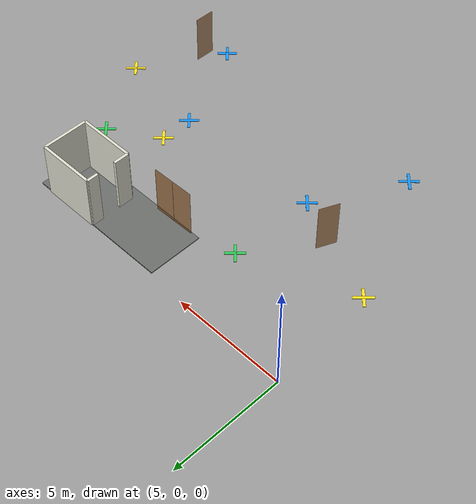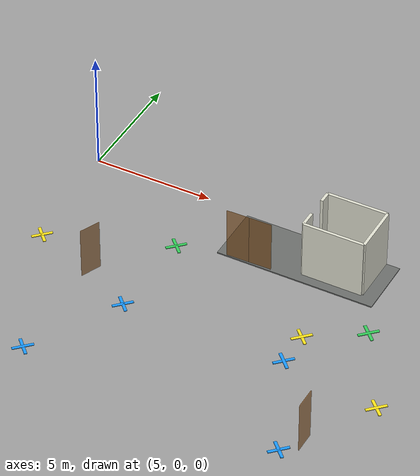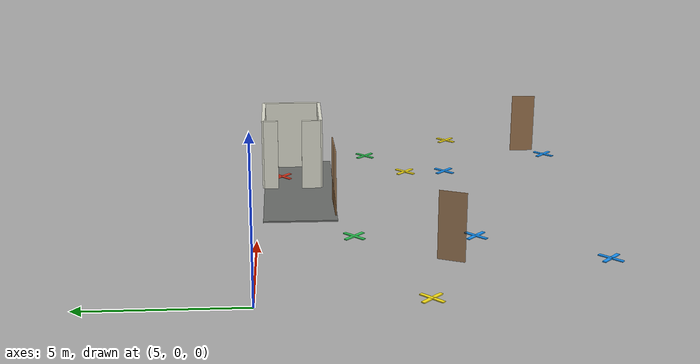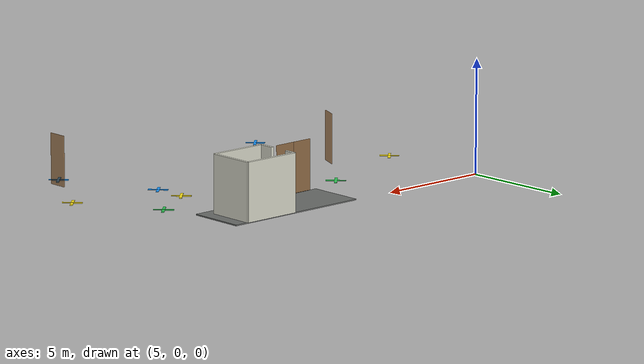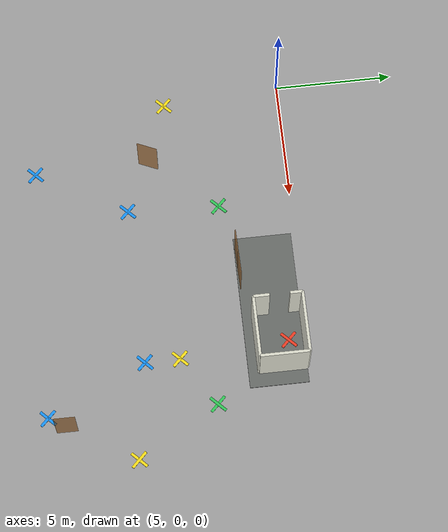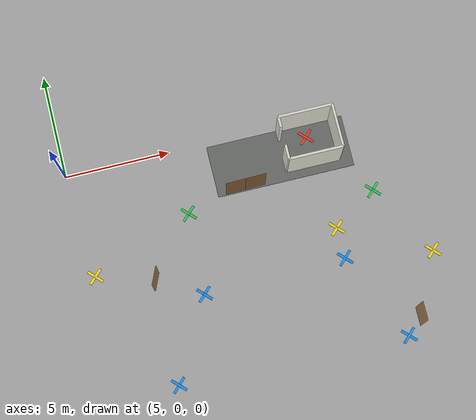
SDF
<sdf version="1.7">
 <world name="office">
  <scene><ambient>0.8 0.8 0.8 1.0</ambient><background>0 0 0</background><grid>false</grid></scene>
  <include><uri>model://sun</uri></include>
  <model name="trash_room_floor_box">
   <static>true</static>
   <link name="floor">
    <visual name="visual">
     <pose>15.099944 -1.409246 -0.025 0 0 0</pose>
     <geometry><box><size>6.60 2.48 0.05</size></box></geometry>
     <material><ambient>0.42 0.43 0.42 1</ambient><diffuse>0.42 0.43 0.42 1</diffuse></material>
    </visual>
    <collision name="collision">
     <pose>15.099944 -1.409246 -0.025 0 0 0</pose>
     <geometry><box><size>6.60 2.48 0.05</size></box></geometry>
    </collision>
   </link>
  </model>
  <model name="trash_room_box_walls">
   <static>true</static>
   <link name="walls">
    <visual name="right_wall_visual">
     <pose>17.776 -1.1851695 1.25 0 0 0</pose>
     <geometry><box><size>0.12 2.03 2.5</size></box></geometry>
     <material><ambient>0.88 0.88 0.82 1</ambient><diffuse>0.88 0.88 0.82 1</diffuse></material>
    </visual>
    <collision name="right_wall_collision">
     <pose>17.776 -1.1851695 1.25 0 0 0</pose>
     <geometry><box><size>0.12 2.03 2.5</size></box></geometry>
    </collision>
    <visual name="top_wall_visual">
     <pose>16.507715 -0.16931 1.25 0 0 0</pose>
     <geometry><box><size>2.54 0.12 2.5</size></box></geometry>
     <material><ambient>0.88 0.88 0.82 1</ambient><diffuse>0.88 0.88 0.82 1</diffuse></material>
    </visual>
    <collision name="top_wall_collision">
     <pose>16.507715 -0.16931 1.25 0 0 0</pose>
     <geometry><box><size>2.54 0.12 2.5</size></box></geometry>
    </collision>
    <visual name="bottom_wall_visual">
     <pose>16.507715 -2.201029 1.25 0 0 0</pose>
     <geometry><box><size>2.54 0.12 2.5</size></box></geometry>
     <material><ambient>0.88 0.88 0.82 1</ambient><diffuse>0.88 0.88 0.82 1</diffuse></material>
    </visual>
    <collision name="bottom_wall_collision">
     <pose>16.507715 -2.201029 1.25 0 0 0</pose>
     <geometry><box><size>2.54 0.12 2.5</size></box></geometry>
    </collision>
    <visual name="left_wall_upper_visual">
     <pose>15.23943 -0.423275 1.25 0 0 0</pose>
     <geometry><box><size>0.12 0.51 2.5</size></box></geometry>
     <material><ambient>0.88 0.88 0.82 1</ambient><diffuse>0.88 0.88 0.82 1</diffuse></material>
    </visual>
    <visual name="left_wall_lower_visual">
     <pose>15.23943 -1.862409 1.25 0 0 0</pose>
     <geometry><box><size>0.12 0.68 2.5</size></box></geometry>
     <material><ambient>0.88 0.88 0.82 1</ambient><diffuse>0.88 0.88 0.82 1</diffuse></material>
    </visual>
   </link>
  </model>
  <model name="main_door">
   <pose>13.131950836046645 -2.579487092649509 0.0 0 0 -3.120269390429785</pose>
   <link name="right">
    <pose>0.473864332736097 0 1.11 0 0 0</pose>
    <visual name="right_visual">
     <geometry><box><size>0.937728665472194 0.03 2.2</size></box></geometry>
     <material><ambient>0.5 0.25 0 0.6</ambient><diffuse>0.5 0.25 0 0.6</diffuse></material>
    </visual>
    <inertial>
     <mass>50.0</mass>
     <inertia><ixx>20.17041666666667</ixx><iyy>23.83056270853443</iyy><izz>3.6676460418677586</izz></inertia>
    </inertial>
   </link>
   <joint name="right_joint" type="revolute">
    <parent>world</parent>
    <child>right</child>
    <axis><xyz>0 0 -1</xyz><limit><lower>0</lower><upper>1.57</upper></limit></axis>
    <pose>0.473864332736097 0 0 0 0 0</pose>
   </joint>
   <link name="left">
    <pose>-0.473864332736097 0 1.11 0 0 0</pose>
    <visual name="left_visual">
     <geometry><box><size>0.937728665472194 0.03 2.2</size></box></geometry>
     <material><ambient>0.5 0.25 0 0.6</ambient><diffuse>0.5 0.25 0 0.6</diffuse></material>
    </visual>
    <inertial>
     <mass>50.0</mass>
     <inertia><ixx>20.17041666666667</ixx><iyy>23.83056270853443</iyy><izz>3.6676460418677586</izz></inertia>
    </inertial>
   </link>
   <joint name="left_joint" type="revolute">
    <parent>world</parent>
    <child>left</child>
    <axis><xyz>0 0 -1</xyz><limit><lower>-1.57</lower><upper>0</upper></limit></axis>
    <pose>-0.473864332736097 0 0 0 0 0</pose>
   </joint>
   <plugin name="door" filename="libdoor.so">
    <v_max_door>1.5</v_max_door>
    <a_max_door>1.0</a_max_door>
    <a_nom_door>0.6</a_nom_door>
    <dx_min_door>0.01</dx_min_door>
    <f_max_door>500.0</f_max_door>
    <door name="main_door" type="DoubleSwingDoor" left_joint_name="left_joint" right_joint_name="right_joint"/>
   </plugin>
  </model>
  <model name="coe_door">
   <pose>8.077686357313898 -5.898342045416362 0.0 0 0 1.1560010438234292</pose>
   <link name="right">
    <pose>0 0 1.11 0 0 0</pose>
    <visual name="right_visual">
     <geometry><box><size>0.8766026166317483 0.03 2.2</size></box></geometry>
     <material><ambient>0.5 0.25 0 0.6</ambient><diffuse>0.5 0.25 0 0.6</diffuse></material>
    </visual>
    <collision name="right_collision">
     <geometry><box><size>0.8766026166317483 0.03 2.2</size></box></geometry>
     <surface><contact><collide_bitmask>0x02</collide_bitmask></contact></surface>
    </collision>
    <inertial>
     <mass>50.0</mass>
     <inertia><ixx>20.17041666666667</ixx><iyy>23.36846728119012</iyy><izz>3.20555061452345</izz></inertia>
    </inertial>
   </link>
   <joint name="right_joint" type="revolute">
    <parent>world</parent>
    <child>right</child>
    <axis><xyz>0 0 -1</xyz><limit><lower>0</lower><upper>1.57</upper></limit></axis>
    <pose>0.44330130831587417 0 0 0 0 0</pose>
   </joint>
   <plugin name="door" filename="libdoor.so">
    <v_max_door>1.5</v_max_door>
    <a_max_door>1.0</a_max_door>
    <a_nom_door>0.6</a_nom_door>
    <dx_min_door>0.01</dx_min_door>
    <f_max_door>500.0</f_max_door>
    <door name="coe_door" type="SwingDoor" left_joint_name="empty_joint" right_joint_name="right_joint"/>
   </plugin>
  </model>
  <model name="hardware_door">
   <pose>19.450062912168402 -10.319158936370446 0.0 0 0 -1.5760607387686447</pose>
   <link name="right">
    <pose>0 0 1.11 0 0 0</pose>
    <visual name="right_visual">
     <geometry><box><size>0.8792617700206885 0.03 2.2</size></box></geometry>
     <material><ambient>0.5 0.25 0 0.6</ambient><diffuse>0.5 0.25 0 0.6</diffuse></material>
    </visual>
    <collision name="right_collision">
     <geometry><box><size>0.8792617700206885 0.03 2.2</size></box></geometry>
     <surface><contact><collide_bitmask>0x02</collide_bitmask></contact></surface>
    </collision>
    <inertial>
     <mass>50.0</mass>
     <inertia><ixx>20.17041666666667</ixx><iyy>23.387921917582982</iyy><izz>3.225005250916309</izz></inertia>
    </inertial>
   </link>
   <joint name="right_joint" type="revolute">
    <parent>world</parent>
    <child>right</child>
    <axis><xyz>0 0 -1</xyz><limit><lower>0</lower><upper>1.57</upper></limit></axis>
    <pose>0.44463088501034426 0 0 0 0 0</pose>
   </joint>
   <plugin name="door" filename="libdoor.so">
    <v_max_door>10.0</v_max_door>
    <a_max_door>6.0</a_max_door>
    <a_nom_door>2.7</a_nom_door>
    <dx_min_door>0.06</dx_min_door>
    <f_max_door>500.0</f_max_door>
    <door name="hardware_door" type="SwingDoor" left_joint_name="empty_joint" right_joint_name="right_joint"/>
   </plugin>
  </model>
  <model name="waypoint_label_pantry">
   <pose>16.84633487483844 -5.404067193990636 0.02 0 0 0</pose>
   <static>true</static>
   <link name="label">
    <visual name="cross_a">
     <pose>0 0 0 0 0 0.785398</pose>
     <geometry><box><size>0.85 0.12 0.03</size></box></geometry>
     <material><ambient>1 0.9 0.1 1</ambient><diffuse>1 0.9 0.1 1</diffuse></material>
    </visual>
    <visual name="cross_b">
     <pose>0 0 0 0 0 -0.785398</pose>
     <geometry><box><size>0.85 0.12 0.03</size></box></geometry>
     <material><ambient>1 0.9 0.1 1</ambient><diffuse>1 0.9 0.1 1</diffuse></material>
    </visual>
   </link>
  </model>
  <model name="waypoint_label_hardware_2">
   <pose>20.948248106963362 -7.497347051865536 0.02 0 0 0</pose>
   <static>true</static>
   <link name="label">
    <visual name="cross_a">
     <pose>0 0 0 0 0 0.785398</pose>
     <geometry><box><size>0.85 0.12 0.03</size></box></geometry>
     <material><ambient>1 0.9 0.1 1</ambient><diffuse>1 0.9 0.1 1</diffuse></material>
    </visual>
    <visual name="cross_b">
     <pose>0 0 0 0 0 -0.785398</pose>
     <geometry><box><size>0.85 0.12 0.03</size></box></geometry>
     <material><ambient>1 0.9 0.1 1</ambient><diffuse>1 0.9 0.1 1</diffuse></material>
    </visual>
   </link>
  </model>
  <model name="waypoint_label_coe">
   <pose>5.346484897599354 -4.976813665783051 0.02 0 0 0</pose>
   <static>true</static>
   <link name="label">
    <visual name="cross_a">
     <pose>0 0 0 0 0 0.785398</pose>
     <geometry><box><size>0.85 0.12 0.03</size></box></geometry>
     <material><ambient>1 0.9 0.1 1</ambient><diffuse>1 0.9 0.1 1</diffuse></material>
    </visual>
    <visual name="cross_b">
     <pose>0 0 0 0 0 -0.785398</pose>
     <geometry><box><size>0.85 0.12 0.03</size></box></geometry>
     <material><ambient>1 0.9 0.1 1</ambient><diffuse>1 0.9 0.1 1</diffuse></material>
    </visual>
   </link>
  </model>
  <model name="waypoint_label_trash_room">
   <pose>16.507715078359277 -0.8042220166379742 0.02 0 0 0</pose>
   <static>true</static>
   <link name="label">
    <visual name="cross_a">
     <pose>0 0 0 0 0 0.785398</pose>
     <geometry><box><size>0.85 0.12 0.03</size></box></geometry>
     <material><ambient>0.95 0.25 0.15 1</ambient><diffuse>0.95 0.25 0.15 1</diffuse></material>
    </visual>
    <visual name="cross_b">
     <pose>0 0 0 0 0 -0.785398</pose>
     <geometry><box><size>0.85 0.12 0.03</size></box></geometry>
     <material><ambient>0.95 0.25 0.15 1</ambient><diffuse>0.95 0.25 0.15 1</diffuse></material>
    </visual>
   </link>
  </model>
  <model name="waypoint_label_patrol_A1">
   <pose>10.086146188918223 -6.979436538645566 0.02 0 0 0</pose>
   <static>true</static>
   <link name="label">
    <visual name="cross_a">
     <pose>0 0 0 0 0 0.785398</pose>
     <geometry><box><size>0.85 0.12 0.03</size></box></geometry>
     <material><ambient>0.1 0.6 1 1</ambient><diffuse>0.1 0.6 1 1</diffuse></material>
    </visual>
    <visual name="cross_b">
     <pose>0 0 0 0 0 -0.785398</pose>
     <geometry><box><size>0.85 0.12 0.03</size></box></geometry>
     <material><ambient>0.1 0.6 1 1</ambient><diffuse>0.1 0.6 1 1</diffuse></material>
    </visual>
   </link>
  </model>
  <model name="waypoint_label_patrol_B">
   <pose>7.988303429285765 -10.780257513236124 0.02 0 0 0</pose>
   <static>true</static>
   <link name="label">
    <visual name="cross_a">
     <pose>0 0 0 0 0 0.785398</pose>
     <geometry><box><size>0.85 0.12 0.03</size></box></geometry>
     <material><ambient>0.1 0.6 1 1</ambient><diffuse>0.1 0.6 1 1</diffuse></material>
    </visual>
    <visual name="cross_b">
     <pose>0 0 0 0 0 -0.785398</pose>
     <geometry><box><size>0.85 0.12 0.03</size></box></geometry>
     <material><ambient>0.1 0.6 1 1</ambient><diffuse>0.1 0.6 1 1</diffuse></material>
    </visual>
   </link>
  </model>
  <model name="waypoint_label_patrol_C">
   <pose>18.813842874806067 -11.078979432195132 0.02 0 0 0</pose>
   <static>true</static>
   <link name="label">
    <visual name="cross_a">
     <pose>0 0 0 0 0 0.785398</pose>
     <geometry><box><size>0.85 0.12 0.03</size></box></geometry>
     <material><ambient>0.1 0.6 1 1</ambient><diffuse>0.1 0.6 1 1</diffuse></material>
    </visual>
    <visual name="cross_b">
     <pose>0 0 0 0 0 -0.785398</pose>
     <geometry><box><size>0.85 0.12 0.03</size></box></geometry>
     <material><ambient>0.1 0.6 1 1</ambient><diffuse>0.1 0.6 1 1</diffuse></material>
    </visual>
   </link>
  </model>
  <model name="waypoint_label_patrol_D1">
   <pose>16.85582469463477 -6.881363780090288 0.02 0 0 0</pose>
   <static>true</static>
   <link name="label">
    <visual name="cross_a">
     <pose>0 0 0 0 0 0.785398</pose>
     <geometry><box><size>0.85 0.12 0.03</size></box></geometry>
     <material><ambient>0.1 0.6 1 1</ambient><diffuse>0.1 0.6 1 1</diffuse></material>
    </visual>
    <visual name="cross_b">
     <pose>0 0 0 0 0 -0.785398</pose>
     <geometry><box><size>0.85 0.12 0.03</size></box></geometry>
     <material><ambient>0.1 0.6 1 1</ambient><diffuse>0.1 0.6 1 1</diffuse></material>
    </visual>
   </link>
  </model>
  <model name="waypoint_label_patrol_A2">
   <pose>18.949764861112804 -4.039082328888211 0.02 0 0 0</pose>
   <static>true</static>
   <link name="label">
    <visual name="cross_a">
     <pose>0 0 0 0 0 0.785398</pose>
     <geometry><box><size>0.85 0.12 0.03</size></box></geometry>
     <material><ambient>0.2 0.8 0.35 1</ambient><diffuse>0.2 0.8 0.35 1</diffuse></material>
    </visual>
    <visual name="cross_b">
     <pose>0 0 0 0 0 -0.785398</pose>
     <geometry><box><size>0.85 0.12 0.03</size></box></geometry>
     <material><ambient>0.2 0.8 0.35 1</ambient><diffuse>0.2 0.8 0.35 1</diffuse></material>
    </visual>
   </link>
  </model>
  <model name="waypoint_label_patrol_D2">
   <pose>10.247854072726847 -3.09205587858002 0.02 0 0 0</pose>
   <static>true</static>
   <link name="label">
    <visual name="cross_a">
     <pose>0 0 0 0 0 0.785398</pose>
     <geometry><box><size>0.85 0.12 0.03</size></box></geometry>
     <material><ambient>0.2 0.8 0.35 1</ambient><diffuse>0.2 0.8 0.35 1</diffuse></material>
    </visual>
    <visual name="cross_b">
     <pose>0 0 0 0 0 -0.785398</pose>
     <geometry><box><size>0.85 0.12 0.03</size></box></geometry>
     <material><ambient>0.2 0.8 0.35 1</ambient><diffuse>0.2 0.8 0.35 1</diffuse></material>
    </visual>
   </link>
  </model>
  <rmf_charger_waypoints name="charger_waypoints">
   <rmf_vertex name="tinyRobot1_charger" x="10.433053704916215" y="-5.5750955876973505" level="L1"/>
   <rmf_vertex name="tinyRobot2_charger" x="20.423692180237488" y="-5.312098057266895" level="L1"/>
  </rmf_charger_waypoints>
 </world>
</sdf>
